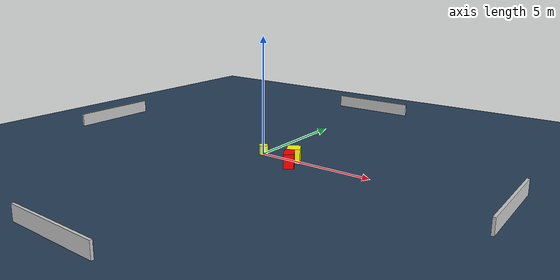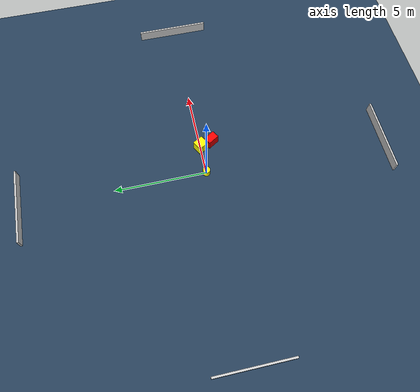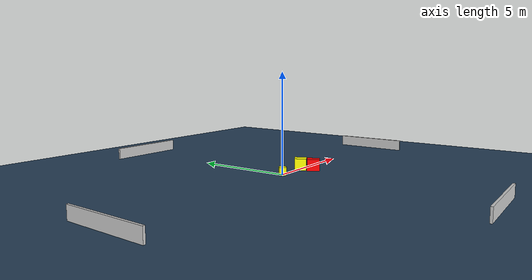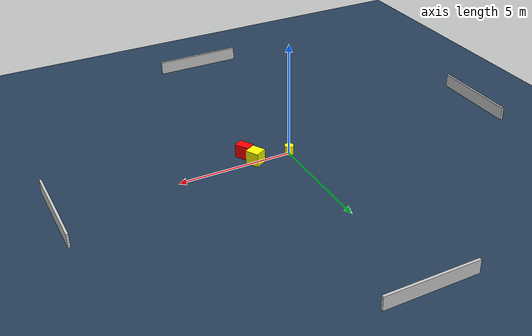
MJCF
<?xml version="1.0" ?>
<mujoco model="generated_environment">
  <option timestep="0.01" integrator="RK4" cone="elliptic"/>
  <default>
    <geom density="1"/>
  </default>
  <asset>
    <texture builtin="gradient" height="3072" name="skybox" rgb1="0.3 0.5 0.7" rgb2="0 0 0" type="skybox" width="512"/>
    <texture builtin="checker" height="300" name="groundplane" rgb1="0.2 0.3 0.4" rgb2="0.1 0.2 0.3" type="2d" width="300"/>
    <material name="groundplane" reflectance="0.2" texrepeat="5 5" texture="groundplane"/>
  </asset>
  <worldbody>
    <light dir="0 0 -1" directional="true" pos="0 0 1.5"/>
    <geom condim="3" friction="0.5 0.005 0.001" material="groundplane" name="floor" pos="0 0 0" size="0 0 0.05" type="plane"/>
    <body name="walls">
      <geom name="wall_1" condim="4" pos="-10.0 0.0 0.3" rgba="0.800000011920929 0.800000011920929 0.800000011920929 1.0" size="0.05 2.0 0.3" type="box"/>
      <geom name="wall_2" condim="4" pos="10.0 0.0 0.3" rgba="0.800000011920929 0.800000011920929 0.800000011920929 1.0" size="0.05 2.0 0.3" type="box"/>
      <geom name="wall_3" condim="4" pos="0.0 -10.0 0.3" rgba="0.800000011920929 0.800000011920929 0.800000011920929 1.0" size="2.0 0.05 0.3" type="box"/>
      <geom name="wall_4" condim="4" pos="0.0 10.0 0.3" rgba="0.800000011920929 0.800000011920929 0.800000011920929 1.0" size="2.0 0.05 0.3" type="box"/>
    </body>
    <body name="robot">
      <joint name="joint_x" type="slide" pos="0 0 0" axis="1 0 0"/>
      <joint name="joint_y" type="slide" pos="0 0 0" axis="0 1 0"/>
      <geom name="robot" type="cylinder" pos="0.0 0.0 0.2" size="0.2 0.2 0.0" mass="5.0" friction="1.0 0.005 0.0001" condim="4" rgba="1.0 1.0 0.0 1.0"/>
    </body>
    <body name="obstacle_1_movable">
      <geom name="obstacle_1_movable" condim="4" pos="1.58430878283787 -0.02273868310673903 0.3" euler="0 0 298.8039545054922" friction="0.0 0.005 0.001" rgba="1.0 1.0 0.0 1.0" size="0.29960862172956115 0.27327803157524444 0.3" type="box" mass="0.1"/>
      <joint type="free"/>
    </body>
    <body name="obstacle_2_static">
      <geom name="obstacle_2_static" condim="4" pos="1.789472453420265 -0.6567897915196114 0.3" euler="0 0 31.79803764011199" friction="0.0 0.005 0.001" rgba="1.0 0.0 0.0 1.0" size="0.21365390902660963 0.3254107921108006 0.3" type="box"/>
    </body>
  </worldbody>
  <actuator>
    <motor name="actuator_x" joint="joint_x" gear="1" ctrlrange="-1 1"/>
    <motor name="actuator_y" joint="joint_y" gear="1" ctrlrange="-1 1"/>
  </actuator>
</mujoco>
